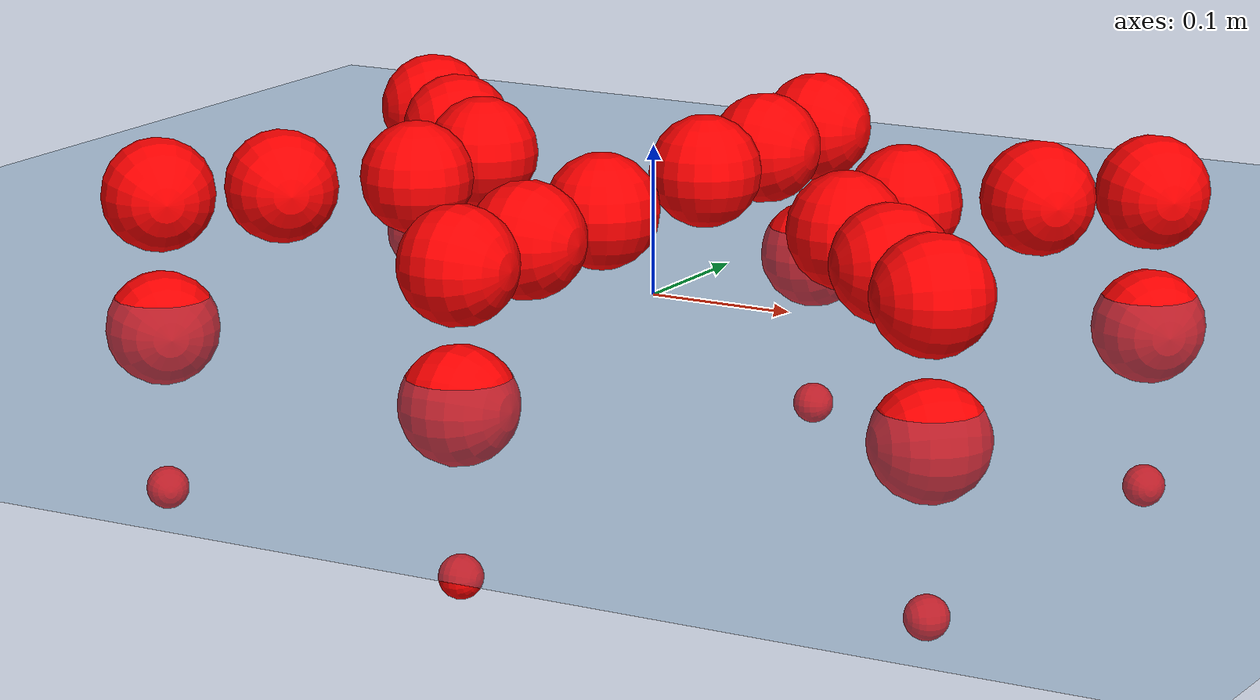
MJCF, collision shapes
<mujoco model="Golem">
  <compiler angle="radian" assetdir="assets" balanceinertia="true" inertiafromgeom="false"/>

  <option timestep="0.005" density="1.2" viscosity="2e-05"/>

  <size nkey="1"/>

  <visual>
    <quality shadowsize="8192"/>
    <map shadowclip="0.5"/>
  </visual>

  <default>
    <default class="/">
      <joint armature="0.01" damping="0.01" frictionloss="0.01"/>
      <geom contype="0" conaffinity="0" group="1" solref="-1000 -80"/>
      <site size="0.01 0.005 0.005" group="5"/>
      <general forcelimited="true" biastype="affine" gainprm="25" biasprm="0 -25 -0.5"/>
      <default class="visual">
        <geom type="mesh" group="2"/>
      </default>
      <default class="collision">
        <geom group="3"/>
      </default>
      <default class="foot">
        <geom size="0.01 0 0" condim="6" group="4" priority="1" solimp="0.015 1 0.01"/>
      </default>
      <default class="reward_collision_sphere">
        <geom group="5" rgba="1 0 0 1"/>
      </default>
    </default>
  </default>

  <asset>
    <texture type="skybox" colorspace="auto" name="//unnamed_texture_0" builtin="gradient" rgb1="0.95 0.95 0.95" rgb2="0.95 0.95 0.95" width="100" height="600"/>
    <texture type="2d" colorspace="auto" name="texplane" builtin="checker" rgb1="0.345 0.575 0.748" rgb2="0.345 0.575 0.748" markrgb="1 1 1" width="512" height="512"/>
    <material name="MatPlane" class="/" texture="texplane" texuniform="true" texrepeat="2 2" specular="0.9"/>
    <mesh name="body" class="/" file="body.stl" scale="0.001 0.001 0.001"/>
    <mesh name="coxa" class="/" file="coxa.stl" scale="0.001 0.001 0.001"/>
    <mesh name="femur" class="/" file="femur.stl" scale="0.001 0.001 0.001"/>
    <mesh name="tibia" class="/" file="tibia.stl" scale="0.001 0.001 0.001"/>
    <mesh name="tarsus" class="/" file="tarsus.stl" scale="0.001 0.001 0.001"/>
  </asset>

  <worldbody>
    <geom name="floor" class="/" size="100 100 0.125" type="plane" group="0" material="MatPlane"/>
    <light name="toplight_shadow" class="/" pos="0 0 5" dir="0.0990148 0.0990148 -0.990148" type="directional" ambient="0.04 0.04 0.04" diffuse="0.55 0.55 0.55" specular="0.12 0.12 0.12"/>
    <light name="toplight_fill" class="/" pos="0 0 5" dir="0.0990148 0.0990148 -0.990148" type="directional" castshadow="false" ambient="0.04 0.04 0.04" diffuse="0.3 0.3 0.3" specular="0.08 0.08 0.08"/>
    <body name="trunk" pos="0.000803102 0.000936744 0.000509943" quat="1 0.000137505 -5.16707e-05 -0.000363896">
      <inertial pos="-0.000483282 0.000280386 -0.00474987" quat="0.99999 -0.00420375 0.000154768 -0.00176336" mass="3.12446" diaginertia="0.010915 0.00232137 0.0144131"/>
      <joint name="//unnamed_joint_0" type="free"/>
      <geom name="//unnamed_geom_1" class="/" pos="0 0 0.0690929" quat="1 0 0 0" type="mesh" rgba="0.9 0.9 0.9 1" mesh="body"/>
      <site name="imu" class="/" pos="0.132755 -0.00404658 0.106925" size="0.0094922"/>
      <camera name="track" class="/" pos="0 -1.49487 0" quat="0.707107 0.707107 0 0" mode="trackcom"/>
      <camera name="ego_camera" class="/" pos="0.132685 0 0.107958" quat="-0.5 -0.5 0.5 0.5"/>
      <body name="coxa_RR" pos="-0.181153 -0.0623451 0.0687237" quat="0.382591 0.000175128 -0.000284273 -0.923918">
        <inertial pos="-0.000208561 0.000452661 0.000124024" quat="0.999999 0.000421849 0.000696325 -0.000672068" mass="0.171411" diaginertia="0.0112218 0.00233309 0.0144176"/>
        <joint name="coxa_joint_RR" class="/" pos="0 0 0" axis="0.00310831 0.00122809 -0.999994" range="-3.14062 3.15224" armature="0.00931434" damping="0.0113898" frictionloss="0.0094949"/>
        <geom name="//unnamed_geom_2" class="/" type="mesh" rgba="0.2 0.2 0.2 1" mesh="coxa"/>
        <geom name="//unnamed_geom_3" class="reward_collision_sphere" size="0.0379688" pos="-0.0306195 0 0"/>
        <body name="femur_RR" pos="0.0606166 0.0018221 -0.000298821" quat="0.499941 -0.499937 0.500055 0.500067">
          <inertial pos="-0.00105821 3.9067e-05 -0.00160529" quat="0.99998 -0.00516257 0.000972146 -0.00363843" mass="0.171284" diaginertia="0.0111114 0.00234639 0.0146559"/>
          <joint name="femur_joint_RR" class="/" pos="0 0 0" axis="-0.00407065 0.00268725 -0.999988" range="-3.1404 3.14083" armature="0.00952854" damping="0" frictionloss="0.00946508"/>
          <geom name="//unnamed_geom_4" class="/" type="mesh" rgba="0.9 0.9 0.9 1" mesh="femur"/>
          <geom name="//unnamed_geom_5" class="reward_collision_sphere" size="0.0379688"/>
          <body name="tibia_RR" pos="0.00105986 -0.0815052 -0.000656776" quat="-5.88524e-05 1 -6.21084e-05 -3.70038e-05">
            <inertial pos="0.000242578 8.12134e-05 -0.000195803" quat="0.999989 -0.000633223 0.00404125 0.00235102" mass="0.173149" diaginertia="0.011245 0.00236761 0.0149782"/>
            <joint name="tibia_joint_RR" class="/" pos="0 0 0" axis="7.02094e-05 -0.00032827 1" range="-3.12053 3.13643" armature="0.0099198" damping="0" frictionloss="0.00964553"/>
            <geom name="//unnamed_geom_6" class="/" type="mesh" rgba="0.2 0.2 0.2 1" mesh="tibia"/>
            <geom name="//unnamed_geom_7" class="reward_collision_sphere" size="0.0379688"/>
            <body name="tarsus_RR" pos="0.0895555 -0.000342113 -0.000419279" quat="1 8.14991e-06 -5.73166e-05 -5.50756e-05">
              <inertial pos="0.0627635 0.000449211 -0.000174793" quat="0.503336 0.495392 0.498687 0.502544" mass="0.176375" diaginertia="0.0110768 0.00234919 0.0148814"/>
              <joint name="tarsus_joint_RR" class="/" pos="0 0 0" axis="0.000143561 -0.000643366 1" range="-3.13333 3.15453" armature="0.00980774" damping="0.0414216" frictionloss="0.00951921"/>
              <geom name="//unnamed_geom_8" class="/" type="mesh" rgba="0.9 0.9 0.9 1" mesh="tarsus"/>
              <geom name="foot_1" class="foot" size="0.00935835" pos="0.114313 0 0" quat="0 -0.707107 0 0.707107"/>
              <geom name="//unnamed_geom_10" class="reward_collision_sphere" size="0.0379688"/>
              <geom name="//unnamed_geom_11" class="reward_collision_sphere" size="0.0142383" pos="0.10972 0 0"/>
              <site name="foot_1" class="foot" pos="0.114313 0 0" quat="0 -0.707107 0 0.707107" size="0.0094922"/>
            </body>
          </body>
        </body>
      </body>
      <body name="coxa_RM" pos="-0.000492491 -0.0996889 0.0691003" quat="0.707067 -0.000386018 0.000381118 -0.707146">
        <inertial pos="0.000330261 0.000266703 -0.000342524" quat="0.999998 0.00215497 0.000248123 -0.000482674" mass="0.171108" diaginertia="0.0110146 0.00233236 0.0147444"/>
        <joint name="coxa_joint_RM" class="/" pos="0 0 0" axis="-0.000456782 0.000307878 -1" range="-3.14806 3.13215" armature="0.00971764" damping="0.0103417" frictionloss="0.00986451"/>
        <geom name="//unnamed_geom_12" class="/" type="mesh" rgba="0.2 0.2 0.2 1" mesh="coxa"/>
        <geom name="//unnamed_geom_13" class="reward_collision_sphere" size="0.0379688" pos="-0.0306195 0 0"/>
        <body name="femur_RM" pos="0.0597982 -0.000798147 -0.000844953" quat="0.499883 -0.500357 0.499904 0.499855">
          <inertial pos="0.000776315 1.37829e-05 0.00012076" quat="0.999985 0.00210689 -0.00468991 0.00212598" mass="0.170352" diaginertia="0.0111008 0.00233634 0.0145681"/>
          <joint name="femur_joint_RM" class="/" pos="0 0 0" axis="-0.000663012 4.47036e-06 -1" range="-3.14404 3.13767" armature="0.0092522" damping="0.0107228" frictionloss="0.00942377"/>
          <geom name="//unnamed_geom_14" class="/" type="mesh" rgba="0.9 0.9 0.9 1" mesh="femur"/>
          <geom name="//unnamed_geom_15" class="reward_collision_sphere" size="0.0379688"/>
          <body name="tibia_RM" pos="-0.000356412 -0.079655 -0.000244651" quat="-1.90078e-05 1 2.17541e-05 0.00014619">
            <inertial pos="-0.00106283 -0.00053321 0.000895316" quat="0.999997 0.00106773 -0.00214575 0.00085566" mass="0.169521" diaginertia="0.0110772 0.0023562 0.0145155"/>
            <joint name="tibia_joint_RM" class="/" pos="0 0 0" axis="-0.00255942 0.00589251 0.999979" stiffness="0.000780927" range="-3.14605 3.15122" armature="0.00949528" damping="0.0132781" frictionloss="0.0097549"/>
            <geom name="//unnamed_geom_16" class="/" type="mesh" rgba="0.2 0.2 0.2 1" mesh="tibia"/>
            <geom name="//unnamed_geom_17" class="reward_collision_sphere" size="0.0379688"/>
            <body name="tarsus_RM" pos="0.0881583 -0.000932794 0.000980674" quat="1 0.00011383 -8.30286e-06 0.000128867">
              <inertial pos="0.0608852 -0.000197294 0.000333483" quat="0.499577 0.501087 0.500952 0.498379" mass="0.170651" diaginertia="0.0109953 0.00232027 0.0145444"/>
              <joint name="tarsus_joint_RM" class="/" pos="0 0 0" axis="0.00157762 -0.000513977 0.999999" range="-3.14245 3.13786" armature="0.00947966" damping="0.00791256" frictionloss="0.00941868"/>
              <geom name="//unnamed_geom_18" class="/" type="mesh" rgba="0.9 0.9 0.9 1" mesh="tarsus"/>
              <geom name="foot_2" class="foot" size="0.00928612" pos="0.114313 0 0" quat="0 -0.707107 0 0.707107"/>
              <geom name="//unnamed_geom_20" class="reward_collision_sphere" size="0.0379688"/>
              <geom name="//unnamed_geom_21" class="reward_collision_sphere" size="0.0142383" pos="0.10972 0 0"/>
              <site name="foot_2" class="foot" pos="0.114313 0 0" quat="0 -0.707107 0 0.707107" size="0.0094922"/>
            </body>
          </body>
        </body>
      </body>
      <body name="coxa_RF" pos="0.181661 -0.0618414 0.0688269" quat="0.923845 -0.000172531 0.000259157 -0.382767">
        <inertial pos="-0.00119403 0.000485907 1.20041e-05" quat="1 -6.84806e-05 0.000157527 0.000369718" mass="0.173405" diaginertia="0.0108634 0.0022922 0.0145781"/>
        <joint name="coxa_joint_RF" class="/" pos="0 0 0" axis="0.00144227 0.00359739 -0.999992" range="-3.12375 3.13618" armature="0.00930231" damping="0.0081975" frictionloss="0.00962702"/>
        <geom name="//unnamed_geom_22" class="/" type="mesh" rgba="0.2 0.2 0.2 1" mesh="coxa"/>
        <geom name="//unnamed_geom_23" class="reward_collision_sphere" size="0.0379688" pos="-0.0306195 0 0"/>
        <body name="femur_RF" pos="0.0597658 -0.000734856 -0.000666077" quat="0.499811 -0.500175 0.499927 0.500087">
          <inertial pos="-0.000842061 0.000838675 -0.000859255" quat="1 -0.00014235 -4.44035e-05 0.000220907" mass="0.172375" diaginertia="0.0109427 0.00232835 0.0145933"/>
          <joint name="femur_joint_RF" class="/" pos="0 0 0" axis="-0.00357576 0.0022654 -0.999991" range="-3.12778 3.15277" armature="0.00944348" damping="0.011015" frictionloss="0.009392"/>
          <geom name="//unnamed_geom_24" class="/" type="mesh" rgba="0.9 0.9 0.9 1" mesh="femur"/>
          <geom name="//unnamed_geom_25" class="reward_collision_sphere" size="0.0379688"/>
          <body name="tibia_RF" pos="0.000390191 -0.0802338 -0.000832017" quat="4.23444e-05 1 2.76226e-05 -3.54572e-05">
            <inertial pos="-0.000479322 0.000152703 0.000779906" quat="0.999989 6.14012e-05 -0.000487664 -0.00475153" mass="0.170007" diaginertia="0.0110573 0.00233143 0.0146619"/>
            <joint name="tibia_joint_RF" class="/" pos="0 0 0" axis="0.00145028 -0.00500705 0.999986" stiffness="0.0011096" range="-3.14482 3.14785" armature="0.00944248" damping="0" frictionloss="0.00935426"/>
            <geom name="//unnamed_geom_26" class="/" type="mesh" rgba="0.2 0.2 0.2 1" mesh="tibia"/>
            <geom name="//unnamed_geom_27" class="reward_collision_sphere" size="0.0379688"/>
            <body name="tarsus_RF" pos="0.0894539 0.000117972 0.000212445" quat="1 -0.000174351 7.86789e-05 -0.000217881">
              <inertial pos="0.0598502 0.000172214 0.000319631" quat="0.499868 0.49853 0.500339 0.501259" mass="0.170456" diaginertia="0.0109829 0.00237485 0.0147091"/>
              <joint name="tarsus_joint_RF" class="/" pos="0 0 0" axis="0.00122686 0.00692584 0.999975" range="-3.1205 3.13564" armature="0.00932888" damping="0" frictionloss="0.0101856"/>
              <geom name="//unnamed_geom_28" class="/" type="mesh" rgba="0.9 0.9 0.9 1" mesh="tarsus"/>
              <geom name="foot_3" class="foot" size="0.00974062" pos="0.114313 0 0" quat="0 -0.707107 0 0.707107"/>
              <geom name="//unnamed_geom_30" class="reward_collision_sphere" size="0.0379688"/>
              <geom name="//unnamed_geom_31" class="reward_collision_sphere" size="0.0142383" pos="0.10972 0 0"/>
              <site name="foot_3" class="foot" pos="0.114313 0 0" quat="0 -0.707107 0 0.707107" size="0.0094922"/>
            </body>
          </body>
        </body>
      </body>
      <body name="coxa_LR" pos="-0.181602 0.0644819 0.0706058" quat="0.382768 -0.000169463 3.51334e-05 0.923845">
        <inertial pos="-0.000299686 2.64152e-05 -0.00067511" quat="0.999999 0.000242337 0.000271222 -0.00153312" mass="0.167421" diaginertia="0.0108359 0.00228559 0.0144331"/>
        <joint name="coxa_joint_LR" class="/" pos="0 0 0" axis="0.00058337 0.000937355 -0.999999" range="-3.1386 3.16528" armature="0.00935105" damping="0.00700574" frictionloss="0.00886824"/>
        <geom name="//unnamed_geom_32" class="/" type="mesh" rgba="0.2 0.2 0.2 1" mesh="coxa"/>
        <geom name="//unnamed_geom_33" class="reward_collision_sphere" size="0.0379688" pos="-0.0306195 0 0"/>
        <body name="femur_LR" pos="0.0611449 -0.00309933 -0.00147984" quat="0.499999 -0.50002 0.499983 0.499998">
          <inertial pos="0.000413545 -0.000221357 8.48755e-05" quat="0.999989 -0.00316104 -0.0033358 0.00130751" mass="0.172992" diaginertia="0.0113087 0.00240439 0.0148353"/>
          <joint name="femur_joint_LR" class="/" pos="0 0 0" axis="-0.00186633 -0.00173721 0.999997" range="-3.14422 3.14542" armature="0.00916794" damping="0.00649431" frictionloss="0.00952445"/>
          <geom name="//unnamed_geom_34" class="/" type="mesh" rgba="0.9 0.9 0.9 1" mesh="femur"/>
          <geom name="//unnamed_geom_35" class="reward_collision_sphere" size="0.0379688"/>
          <body name="tibia_LR" pos="0.000488856 -0.0811595 -0.00125877" quat="0.000125992 1 8.95868e-06 8.89501e-05">
            <inertial pos="-0.00112945 0.0012251 0.0002176" quat="1 -0.000917081 -0.000173613 -0.000156857" mass="0.172515" diaginertia="0.0112913 0.00233435 0.0144384"/>
            <joint name="tibia_joint_LR" class="/" pos="0 0 0" axis="-2.99436e-05 0.000411027 -1" range="-3.14323 3.13964" armature="0.00938155" damping="0.00200965" frictionloss="0.0090379"/>
            <geom name="//unnamed_geom_36" class="/" type="mesh" rgba="0.2 0.2 0.2 1" mesh="tibia"/>
            <geom name="//unnamed_geom_37" class="reward_collision_sphere" size="0.0379688"/>
            <body name="tarsus_LR" pos="0.0904154 -0.000218909 0.00245599" quat="1 0.000460858 -1.22309e-05 4.72655e-05">
              <inertial pos="0.0628853 0.00134243 0.000533413" quat="0.498047 0.502869 0.497739 0.501326" mass="0.167025" diaginertia="0.0107803 0.00229054 0.0143554"/>
              <joint name="tarsus_joint_LR" class="/" pos="0 0 0" axis="0.00092186 -0.000485148 -0.999999" stiffness="0.0013779" range="-3.14953 3.13028" armature="0.00881529" damping="0.0284319" frictionloss="0.00967876"/>
              <geom name="//unnamed_geom_38" class="/" type="mesh" rgba="0.9 0.9 0.9 1" mesh="tarsus"/>
              <geom name="foot_4" class="foot" size="0.0093893" pos="0.114313 0 0" quat="0.707107 0 -0.707107 0"/>
              <geom name="//unnamed_geom_40" class="reward_collision_sphere" size="0.0379688"/>
              <geom name="//unnamed_geom_41" class="reward_collision_sphere" size="0.0142383" pos="0.10972 0 0"/>
              <site name="foot_4" class="foot" pos="0.114313 0 0" quat="0.707107 0 -0.707107 0" size="0.0094922"/>
            </body>
          </body>
        </body>
      </body>
      <body name="coxa_LM" pos="-0.000209587 0.0976744 0.0697749" quat="0.707033 -0.000541515 -0.00031649 0.70718">
        <inertial pos="0.000528188 -0.000604981 0.00199099" quat="1 6.60329e-06 -2.34727e-05 -1.61477e-06" mass="0.170223" diaginertia="0.0109652 0.00231837 0.0145097"/>
        <joint name="coxa_joint_LM" class="/" pos="0 0 0" axis="-0.00306289 -0.000517975 -0.999995" range="-3.13829 3.14408" armature="0.0101878" damping="0" frictionloss="0.00938932"/>
        <geom name="//unnamed_geom_42" class="/" type="mesh" rgba="0.2 0.2 0.2 1" mesh="coxa"/>
        <geom name="//unnamed_geom_43" class="reward_collision_sphere" size="0.0379688" pos="-0.0306195 0 0"/>
        <body name="femur_LM" pos="0.0573468 0.00137514 -0.000410952" quat="0.49969 -0.500133 0.499971 0.500205">
          <inertial pos="-0.000125633 -0.000244879 -0.000596737" quat="0.999989 0.00395433 -0.000130201 -0.00253939" mass="0.170637" diaginertia="0.01093 0.0023235 0.0145459"/>
          <joint name="femur_joint_LM" class="/" pos="0 0 0" axis="-0.00162769 0.00232104 0.999996" range="-3.157 3.14073" armature="0.00908632" damping="0.00487454" frictionloss="0.00946724"/>
          <geom name="//unnamed_geom_44" class="/" type="mesh" rgba="0.9 0.9 0.9 1" mesh="femur"/>
          <geom name="//unnamed_geom_45" class="reward_collision_sphere" size="0.0379688"/>
          <body name="tibia_LM" pos="-0.000797119 -0.0781642 0.000729998" quat="2.35474e-06 1 -2.6376e-06 1.26148e-06">
            <inertial pos="0.000939965 -0.00158097 0.00152566" quat="0.999999 -0.000818901 0.000279948 -0.000642033" mass="0.171525" diaginertia="0.0112355 0.00232788 0.014623"/>
            <joint name="tibia_joint_LM" class="/" pos="0 0 0" axis="0.00163311 0.00594714 -0.999981" range="-3.13989 3.14341" armature="0.00918742" damping="0.00130868" frictionloss="0.00966327"/>
            <geom name="//unnamed_geom_46" class="/" type="mesh" rgba="0.2 0.2 0.2 1" mesh="tibia"/>
            <geom name="//unnamed_geom_47" class="reward_collision_sphere" size="0.0379688"/>
            <body name="tarsus_LM" pos="0.091212 -0.000435015 -0.00102504" quat="1 0.000293083 -6.61916e-05 0.000213314">
              <inertial pos="0.0616889 -4.71181e-05 -0.000945259" quat="0.499768 0.500721 0.499318 0.500193" mass="0.17357" diaginertia="0.0111227 0.00241908 0.0150224"/>
              <joint name="tarsus_joint_LM" class="/" pos="0 0 0" axis="0.00120201 -0.00251071 -0.999996" range="-3.17381 3.14628" armature="0.00954841" damping="0" frictionloss="0.00941942"/>
              <geom name="//unnamed_geom_48" class="/" type="mesh" rgba="0.9 0.9 0.9 1" mesh="tarsus"/>
              <geom name="foot_5" class="foot" size="0.00954454" pos="0.114313 0 0" quat="0.707107 0 -0.707107 0"/>
              <geom name="//unnamed_geom_50" class="reward_collision_sphere" size="0.0379688"/>
              <geom name="//unnamed_geom_51" class="reward_collision_sphere" size="0.0142383" pos="0.10972 0 0"/>
              <site name="foot_5" class="foot" pos="0.114313 0 0" quat="0.707107 0 -0.707107 0" size="0.0094922"/>
            </body>
          </body>
        </body>
      </body>
      <body name="coxa_LF" pos="0.181615 0.0634354 0.0704396" quat="0.923904 -0.000279564 -0.000281145 0.382625">
        <inertial pos="0.000143286 0.00135087 0.000572768" quat="0.999999 -0.000593376 0.00100442 -0.00106238" mass="0.174301" diaginertia="0.011388 0.00236254 0.0149296"/>
        <joint name="coxa_joint_LF" class="/" pos="0 0 0" axis="0.000306722 -0.000539123 -1" range="-3.14194 3.13912" armature="0.0102941" damping="0.0045006" frictionloss="0.00947442"/>
        <geom name="//unnamed_geom_52" class="/" type="mesh" rgba="0.2 0.2 0.2 1" mesh="coxa"/>
        <geom name="//unnamed_geom_53" class="reward_collision_sphere" size="0.0379688" pos="-0.0306195 0 0"/>
        <body name="femur_LF" pos="0.0608049 -0.00126073 -0.00191681" quat="0.500021 -0.500014 0.499962 0.500003">
          <inertial pos="-0.000762798 -0.000457543 0.0014924" quat="0.999998 -0.00131852 0.000485945 0.00114236" mass="0.171516" diaginertia="0.0111981 0.00238011 0.0146686"/>
          <joint name="femur_joint_LF" class="/" pos="0 0 0" axis="0.00364112 0.00134492 0.999992" range="-3.14197 3.1164" armature="0.00949341" damping="0.001258" frictionloss="0.00962333"/>
          <geom name="//unnamed_geom_54" class="/" type="mesh" rgba="0.9 0.9 0.9 1" mesh="femur"/>
          <geom name="//unnamed_geom_55" class="reward_collision_sphere" size="0.0379688"/>
          <body name="tibia_LF" pos="0.00095567 -0.0802907 0.000935896" quat="-4.51306e-05 1 -6.47984e-05 9.64993e-05">
            <inertial pos="0.000221032 -0.000727619 -5.3764e-05" quat="0.999997 0.00135722 0.000437949 -0.00210206" mass="0.171724" diaginertia="0.0112157 0.00233275 0.0147283"/>
            <joint name="tibia_joint_LF" class="/" pos="0 0 0" axis="-0.00025293 -0.00341485 -0.999994" range="-3.14156 3.13584" armature="0.00909434" damping="0.00103308" frictionloss="0.00982019"/>
            <geom name="//unnamed_geom_56" class="/" type="mesh" rgba="0.2 0.2 0.2 1" mesh="tibia"/>
            <geom name="//unnamed_geom_57" class="reward_collision_sphere" size="0.0379688"/>
            <body name="tarsus_LF" pos="0.0903405 -0.000579893 0.000472524" quat="1 -0.000659406 -0.00052782 -0.000101279">
              <inertial pos="0.0634359 0.000225903 0.00054175" quat="0.499968 0.500249 0.499952 0.499831" mass="0.171868" diaginertia="0.0108685 0.00228816 0.0145863"/>
              <joint name="tarsus_joint_LF" class="/" pos="0 0 0" axis="-0.00453102 -0.00831264 -0.999955" stiffness="0.0282567" range="-3.14491 3.13529" armature="0.00932905" damping="0.0225191" frictionloss="0.00904425"/>
              <geom name="//unnamed_geom_58" class="/" type="mesh" rgba="0.9 0.9 0.9 1" mesh="tarsus"/>
              <geom name="foot_6" class="foot" size="0.00932887" pos="0.114313 0 0" quat="0.707107 0 -0.707107 0"/>
              <geom name="//unnamed_geom_60" class="reward_collision_sphere" size="0.0379688"/>
              <geom name="//unnamed_geom_61" class="reward_collision_sphere" size="0.0142383" pos="0.10972 0 0"/>
              <site name="foot_6" class="foot" pos="0.114313 0 0" quat="0.707107 0 -0.707107 0" size="0.0094922"/>
            </body>
          </body>
        </body>
      </body>
    </body>
  </worldbody>

  <contact>
    <pair class="/" geom1="floor" geom2="foot_1" name="//unnamed_contact_0"/>
    <pair class="/" geom1="floor" geom2="foot_2" name="//unnamed_contact_1"/>
    <pair class="/" geom1="floor" geom2="foot_3" name="//unnamed_contact_2"/>
    <pair class="/" geom1="floor" geom2="foot_4" name="//unnamed_contact_3"/>
    <pair class="/" geom1="floor" geom2="foot_5" name="//unnamed_contact_4"/>
    <pair class="/" geom1="floor" geom2="foot_6" name="//unnamed_contact_5"/>
  </contact>

  <actuator>
    <general name="coxa_joint_RR" class="/" joint="coxa_joint_RR" forcerange="-6.67461 6.67461" gainprm="22.9536" biasprm="0 -22.9536 -0.504658"/>
    <general name="femur_joint_RR" class="/" joint="femur_joint_RR" forcerange="-6.70041 6.70041" gainprm="22.9536" biasprm="0 -22.9536 -0.504658"/>
    <general name="tibia_joint_RR" class="/" joint="tibia_joint_RR" forcerange="-6.56589 6.56589" gainprm="22.9536" biasprm="0 -22.9536 -0.504658"/>
    <general name="tarsus_joint_RR" class="/" joint="tarsus_joint_RR" forcerange="-6.68098 6.68098" gainprm="22.9536" biasprm="0 -22.9536 -0.504658"/>
    <general name="coxa_joint_RM" class="/" joint="coxa_joint_RM" forcerange="-6.92375 6.92375" gainprm="22.9536" biasprm="0 -22.9536 -0.504658"/>
    <general name="femur_joint_RM" class="/" joint="femur_joint_RM" forcerange="-6.918 6.918" gainprm="22.9536" biasprm="0 -22.9536 -0.504658"/>
    <general name="tibia_joint_RM" class="/" joint="tibia_joint_RM" forcerange="-6.78799 6.78799" gainprm="22.9536" biasprm="0 -22.9536 -0.504658"/>
    <general name="tarsus_joint_RM" class="/" joint="tarsus_joint_RM" forcerange="-7.25936 7.25936" gainprm="22.9536" biasprm="0 -22.9536 -0.504658"/>
    <general name="coxa_joint_RF" class="/" joint="coxa_joint_RF" forcerange="-7.03883 7.03883" gainprm="22.9536" biasprm="0 -22.9536 -0.504658"/>
    <general name="femur_joint_RF" class="/" joint="femur_joint_RF" forcerange="-7.00275 7.00275" gainprm="22.9536" biasprm="0 -22.9536 -0.504658"/>
    <general name="tibia_joint_RF" class="/" joint="tibia_joint_RF" forcerange="-7.15714 7.15714" gainprm="22.9536" biasprm="0 -22.9536 -0.504658"/>
    <general name="tarsus_joint_RF" class="/" joint="tarsus_joint_RF" forcerange="-6.70966 6.70966" gainprm="22.9536" biasprm="0 -22.9536 -0.504658"/>
    <general name="coxa_joint_LR" class="/" joint="coxa_joint_LR" forcerange="-6.95065 6.95065" gainprm="22.9536" biasprm="0 -22.9536 -0.504658"/>
    <general name="femur_joint_LR" class="/" joint="femur_joint_LR" forcerange="-6.93945 6.93945" gainprm="22.9536" biasprm="0 -22.9536 -0.504658"/>
    <general name="tibia_joint_LR" class="/" joint="tibia_joint_LR" forcerange="-7.1444 7.1444" gainprm="22.9536" biasprm="0 -22.9536 -0.504658"/>
    <general name="tarsus_joint_LR" class="/" joint="tarsus_joint_LR" forcerange="-7.12535 7.12535" gainprm="22.9536" biasprm="0 -22.9536 -0.504658"/>
    <general name="coxa_joint_LM" class="/" joint="coxa_joint_LM" forcerange="-7.14148 7.14148" gainprm="22.9536" biasprm="0 -22.9536 -0.504658"/>
    <general name="femur_joint_LM" class="/" joint="femur_joint_LM" forcerange="-6.91884 6.91884" gainprm="22.9536" biasprm="0 -22.9536 -0.504658"/>
    <general name="tibia_joint_LM" class="/" joint="tibia_joint_LM" forcerange="-7.06265 7.06265" gainprm="22.9536" biasprm="0 -22.9536 -0.504658"/>
    <general name="tarsus_joint_LM" class="/" joint="tarsus_joint_LM" forcerange="-6.81669 6.81669" gainprm="22.9536" biasprm="0 -22.9536 -0.504658"/>
    <general name="coxa_joint_LF" class="/" joint="coxa_joint_LF" forcerange="-7.05397 7.05397" gainprm="22.9536" biasprm="0 -22.9536 -0.504658"/>
    <general name="femur_joint_LF" class="/" joint="femur_joint_LF" forcerange="-6.98343 6.98343" gainprm="22.9536" biasprm="0 -22.9536 -0.504658"/>
    <general name="tibia_joint_LF" class="/" joint="tibia_joint_LF" forcerange="-6.7429 6.7429" gainprm="22.9536" biasprm="0 -22.9536 -0.504658"/>
    <general name="tarsus_joint_LF" class="/" joint="tarsus_joint_LF" forcerange="-7.12994 7.12994" gainprm="22.9536" biasprm="0 -22.9536 -0.504658"/>
  </actuator>

  <sensor>
    <gyro site="imu" name="imu_angular_velocity"/>
    <velocimeter site="imu" name="imu_linear_velocity"/>
    <framelinvel objtype="site" objname="foot_1" name="foot_1_global_linear_velocity"/>
    <framelinvel objtype="site" objname="foot_2" name="foot_2_global_linear_velocity"/>
    <framelinvel objtype="site" objname="foot_3" name="foot_3_global_linear_velocity"/>
    <framelinvel objtype="site" objname="foot_4" name="foot_4_global_linear_velocity"/>
    <framelinvel objtype="site" objname="foot_5" name="foot_5_global_linear_velocity"/>
    <framelinvel objtype="site" objname="foot_6" name="foot_6_global_linear_velocity"/>
  </sensor>

  <keyframe>
    <key name="home" qpos="0 0 0.1457 1 0 0 0 0 0 0 0 0 0 0 0 0 0 0 0 0 0 0 0 0 0 0 0 0 0 0 0"/>
  </keyframe>
</mujoco>
